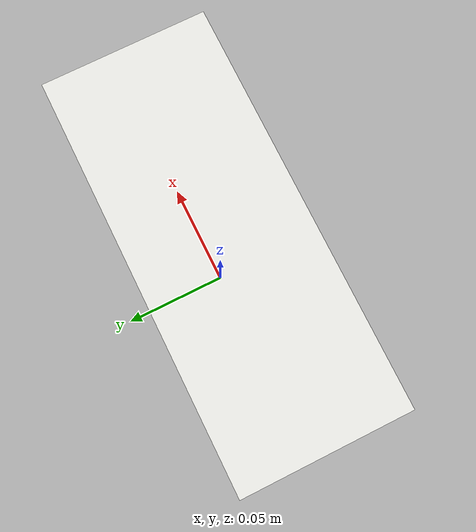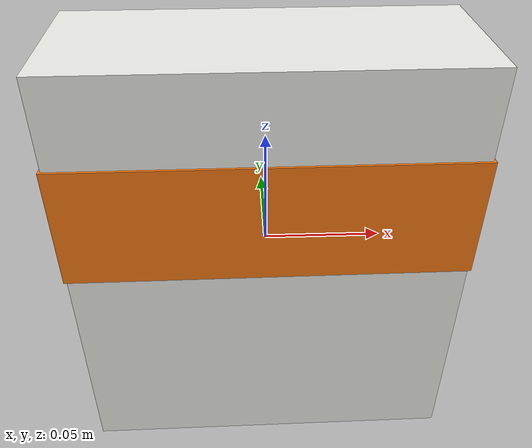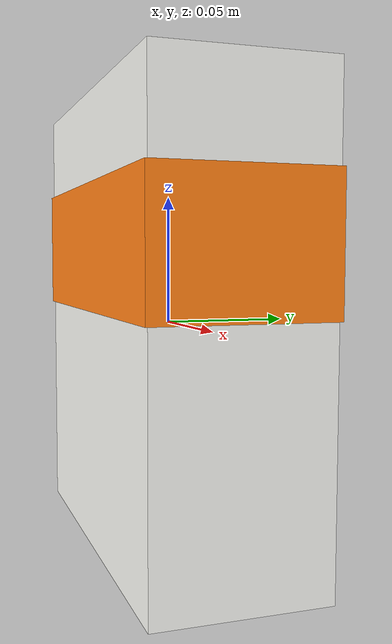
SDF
<?xml version="1.0" encoding="UTF-8"?>
<sdf version="1.9">
  <model name="cargo_payload">
    <static>false</static>
    <link name="payload">
      <inertial>
        <mass>0.090</mass>
        <inertia>
          <ixx>0.00027469</ixx><ixy>0</ixy><ixz>0</ixz>
          <iyy>0.00043500</iyy><iyz>0</iyz>
          <izz>0.00022369</izz>
        </inertia>
      </inertial>
      <!-- white/cream card body, centred on the link origin -->
      <visual name="body">
        <geometry>
          <box><size>0.16 0.065 0.18</size></box>
        </geometry>
        <material>
          <ambient>0.92 0.92 0.90 1</ambient>
          <diffuse>0.96 0.96 0.94 1</diffuse>
          <specular>0.05 0.05 0.05 1</specular>
        </material>
      </visual>
      <!-- orange accent band (same motif as cargo_box's accent_stripe) so a
           shed box reads clearly against the white pad + green turf. -->
      <visual name="accent_band">
        <pose>0 0 0.03 0 0 0</pose>
        <geometry>
          <box><size>0.162 0.067 0.05</size></box>
        </geometry>
        <material>
          <ambient>0.85 0.40 0.05 1</ambient>
          <diffuse>1.00 0.50 0.08 1</diffuse>
        </material>
      </visual>
      <collision name="collision">
        <geometry>
          <box><size>0.16 0.065 0.18</size></box>
        </geometry>
        <surface>
          <contact><collide_bitmask>0x02</collide_bitmask></contact>
        </surface>
      </collision>
    </link>
  </model>
</sdf>
